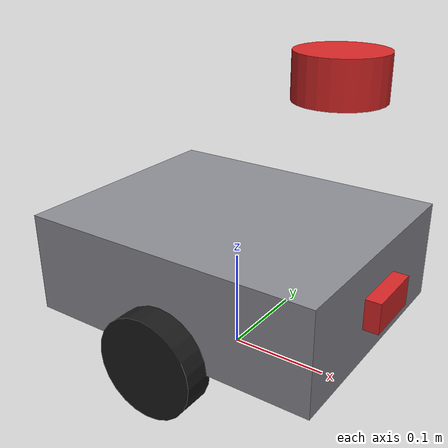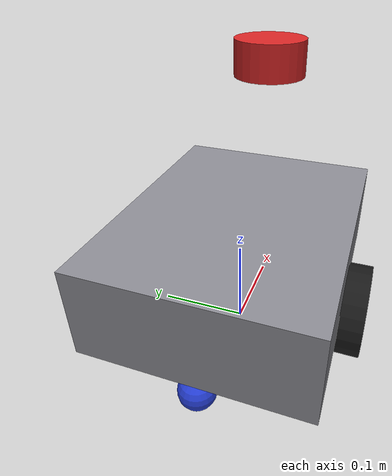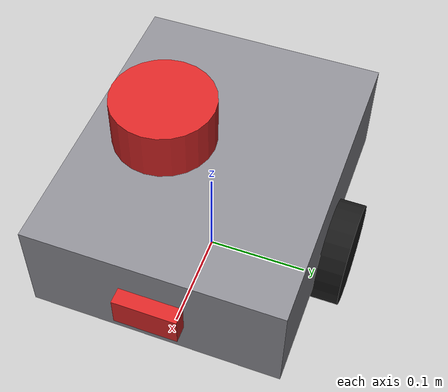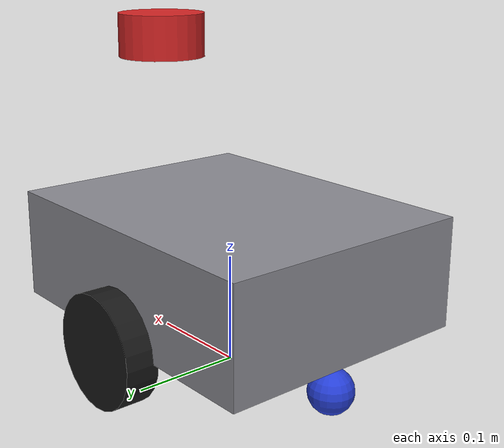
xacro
<?xml version="1.0"?>
<robot name="diff_bot" xmlns:xacro="http://www.ros.org/wiki/xacro">
  <xacro:arg name="sim" default="classic"/>
  <xacro:property name="sim" value="$(arg sim)"/>
  <xacro:property name="chassis_len"   value="0.30"/>
  <xacro:property name="chassis_wid"   value="0.24"/>
  <xacro:property name="chassis_hgt"   value="0.10"/>
  <xacro:property name="chassis_mass"  value="3.0"/>
  <xacro:property name="wheel_rad"     value="0.05"/>
  <xacro:property name="wheel_wid"     value="0.03"/>
  <xacro:property name="wheel_mass"    value="0.2"/>
  <xacro:property name="wheel_sep"     value="0.26"/>
  <xacro:property name="caster_rad"    value="0.02"/>
  <xacro:property name="caster_mass"   value="0.1"/>
  <xacro:property name="laser_size"    value="0.04"/>
  <xacro:property name="laser_mass"    value="0.05"/>
  <xacro:property name="laser_height"  value="0.14"/>
  <material name="grey">  <color rgba="0.55 0.55 0.58 1.0"/></material>
  <material name="black"> <color rgba="0.10 0.10 0.10 1.0"/></material>
  <material name="red">   <color rgba="0.85 0.15 0.15 1.0"/></material>
  <material name="blue">  <color rgba="0.15 0.25 0.85 1.0"/></material>
  <xacro:macro name="box_inertia" params="m l w h">
    <inertial>
      <mass value="${m}"/>
      <inertia ixx="${m*(h*h+w*w)/12.0}" ixy="0" ixz="0"
               iyy="${m*(l*l+h*h)/12.0}" iyz="0"
               izz="${m*(l*l+w*w)/12.0}"/>
    </inertial>
  </xacro:macro>
  <xacro:macro name="cyl_inertia" params="m r h">
    <inertial>
      <mass value="${m}"/>
      <inertia ixx="${m*(3*r*r+h*h)/12.0}" ixy="0" ixz="0"
               iyy="${m*r*r/2.0}"          iyz="0"
               izz="${m*(3*r*r+h*h)/12.0}"/>
    </inertial>
  </xacro:macro>

  <link name="base_footprint"/>

  <joint name="base_joint" type="fixed">
    <parent link="base_footprint"/>
    <child  link="base_link"/>

    <origin xyz="0 0 ${wheel_rad + chassis_hgt/2}" rpy="0 0 0"/>
  </joint>

  <link name="base_link">
    <visual>
      <origin xyz="0 0 0" rpy="0 0 0"/>
      <geometry><box size="${chassis_len} ${chassis_wid} ${chassis_hgt}"/></geometry>
      <material name="grey"/>
    </visual>
    <collision>
      <origin xyz="0 0 0" rpy="0 0 0"/>
      <geometry><box size="${chassis_len} ${chassis_wid} ${chassis_hgt}"/></geometry>
    </collision>
    <xacro:box_inertia m="${chassis_mass}" l="${chassis_len}" w="${chassis_wid}" h="${chassis_hgt}"/>
  </link>

  <joint name="nose_joint" type="fixed">
    <parent link="base_link"/>
    <child  link="nose_link"/>
    <origin xyz="${chassis_len/2} 0 0" rpy="0 0 0"/>
  </joint>
  <link name="nose_link">
    <visual>
      <geometry><box size="0.03 0.06 0.03"/></geometry>
      <material name="red"/>
    </visual>

    <collision>
      <geometry><box size="0.03 0.06 0.03"/></geometry>
    </collision>

    <xacro:box_inertia m="0.02" l="0.03" w="0.06" h="0.03"/>
  </link>
  <xacro:macro name="drive_wheel" params="prefix y_sign color">
    <link name="${prefix}_wheel_link">
      <visual>
        <origin xyz="0 0 0" rpy="${pi/2} 0 0"/>
        <geometry><cylinder radius="${wheel_rad}" length="${wheel_wid}"/></geometry>
        <material name="${color}"/>
      </visual>
      <collision>
        <origin xyz="0 0 0" rpy="${pi/2} 0 0"/>
        <geometry><cylinder radius="${wheel_rad}" length="${wheel_wid}"/></geometry>
      </collision>
      <xacro:cyl_inertia m="${wheel_mass}" r="${wheel_rad}" h="${wheel_wid}"/>
    </link>
    <joint name="${prefix}_wheel_joint" type="continuous">
      <parent link="base_link"/>
      <child  link="${prefix}_wheel_link"/>
      <origin xyz="0 ${y_sign*wheel_sep/2} ${-chassis_hgt/2}" rpy="0 0 0"/>
      <axis xyz="0 1 0"/>
      <limit effort="20" velocity="20"/>
      <dynamics damping="0.1" friction="0.1"/>
    </joint>
  </xacro:macro>
  <xacro:drive_wheel prefix="left"  y_sign="1"  color="black"/>
  <xacro:drive_wheel prefix="right" y_sign="-1" color="black"/>
  <link name="caster_link">
    <visual>
      <geometry><sphere radius="${caster_rad}"/></geometry>
      <material name="blue"/>
    </visual>
    <collision>
      <geometry><sphere radius="${caster_rad}"/></geometry>
    </collision>
    <inertial>
      <mass value="${caster_mass}"/>
      <inertia ixx="${2*caster_mass*caster_rad*caster_rad/5.0}" ixy="0" ixz="0"
               iyy="${2*caster_mass*caster_rad*caster_rad/5.0}" iyz="0"
               izz="${2*caster_mass*caster_rad*caster_rad/5.0}"/>
    </inertial>
  </link>

  <joint name="caster_joint" type="continuous">
    <parent link="base_link"/>
    <child  link="caster_link"/>
    <origin xyz="${-chassis_len/2 + 0.02} 0 ${-chassis_hgt/2 - wheel_rad + caster_rad}" rpy="0 0 0"/>
    <axis xyz="1 0 0"/>
    <limit effort="1" velocity="20"/>
  </joint>
  <gazebo reference="caster_link">
    <mu1>0.0</mu1>
    <mu2>0.0</mu2>
    <kp>1000000.0</kp>
    <kd>1.0</kd>
    <minDepth>0.001</minDepth>
    <maxVel>0.1</maxVel>
  </gazebo>
  <gazebo reference="left_wheel_link">
    <mu1>1.0</mu1>
    <mu2>1.0</mu2>
  </gazebo>
  <gazebo reference="right_wheel_link">
    <mu1>1.0</mu1>
    <mu2>1.0</mu2>
  </gazebo>
  <link name="laser_link">
    <visual>
      <geometry><cylinder radius="${laser_size}" length="${laser_size}"/></geometry>
      <material name="red"/>
    </visual>
    <xacro:cyl_inertia m="${laser_mass}" r="${laser_size}" h="${laser_size}"/>
  </link>
  <joint name="laser_joint" type="fixed">
    <parent link="base_link"/>
    <child  link="laser_link"/>
    <origin xyz="${chassis_len/2 - 0.05} 0 ${chassis_hgt/2 + laser_height}" rpy="0 0 0"/>
  </joint>
  <xacro:if value="${sim == 'classic'}">
  <gazebo>
    <plugin filename="libgazebo_ros_diff_drive.so" name="diff_drive">
      <ros>
        <namespace>/</namespace>
        <remapping>cmd_vel:=cmd_vel</remapping>
        <remapping>odom:=odom</remapping>
      </ros>
      <update_rate>100</update_rate>
      <left_joint>left_wheel_joint</left_joint>
      <right_joint>right_wheel_joint</right_joint>
      <wheel_separation>${wheel_sep}</wheel_separation>
      <wheel_diameter>${wheel_rad*2}</wheel_diameter>
      <max_wheel_torque>20</max_wheel_torque>
      <max_wheel_acceleration>1.0</max_wheel_acceleration>
      <publish_odom>true</publish_odom>
      <publish_odom_tf>true</publish_odom_tf>
      <publish_wheel_tf>true</publish_wheel_tf>
      <odometry_frame>odom</odometry_frame>
      <robot_base_frame>base_footprint</robot_base_frame>
    </plugin>
  </gazebo>
  </xacro:if>
  <xacro:if value="${sim == 'gz'}">
  <gazebo>
    <plugin filename="ignition-gazebo-diff-drive-system"
            name="ignition::gazebo::systems::DiffDrive">
      <left_joint>left_wheel_joint</left_joint>
      <right_joint>right_wheel_joint</right_joint>
      <wheel_separation>${wheel_sep}</wheel_separation>
      <wheel_radius>${wheel_rad}</wheel_radius>
      <max_linear_acceleration>1.0</max_linear_acceleration>
      <min_linear_acceleration>-1.0</min_linear_acceleration>
      <max_angular_acceleration>2.0</max_angular_acceleration>
      <min_angular_acceleration>-2.0</min_angular_acceleration>
      <max_linear_velocity>0.5</max_linear_velocity>
      <min_linear_velocity>-0.5</min_linear_velocity>
      <max_angular_velocity>2.0</max_angular_velocity>
      <min_angular_velocity>-2.0</min_angular_velocity>
      <topic>/cmd_vel</topic>
      <odom_topic>/odom</odom_topic>
      <tf_topic>/tf</tf_topic>
      <frame_id>odom</frame_id>
      <child_frame_id>base_footprint</child_frame_id>
      <odom_publish_frequency>50</odom_publish_frequency>
    </plugin>
  </gazebo>
  </xacro:if>
  <xacro:if value="${sim == 'classic'}">
  <gazebo reference="laser_link">
    <sensor name="laser" type="ray">
      <always_on>true</always_on>
      <update_rate>20</update_rate>
      <visualize>true</visualize>
      <pose>0 0 0 0 0 0</pose>
      <ray>
        <scan>
          <horizontal>
            <samples>720</samples>
            <resolution>1.0</resolution>
            <min_angle>-3.14159265</min_angle>
            <max_angle>3.14159265</max_angle>
          </horizontal>
        </scan>
        <range>
          <min>0.20</min>
          <max>12.0</max>
          <resolution>0.01</resolution>
        </range>

        <noise>
          <type>gaussian</type>
          <mean>0.0</mean>
          <stddev>0.01</stddev>
        </noise>
      </ray>

      <plugin filename="libgazebo_ros_ray_sensor.so" name="laser_controller">
        <ros>
          <namespace>/</namespace>

          <remapping>~/out:=scan</remapping>
        </ros>
        <output_type>sensor_msgs/LaserScan</output_type>
        <frame_name>laser_link</frame_name>
      </plugin>
    </sensor>
  </gazebo>
  </xacro:if>
  <xacro:if value="${sim == 'gz'}">
  <gazebo reference="laser_link">
    <sensor name="laser" type="gpu_lidar">
      <topic>/scan</topic>
      <always_on>true</always_on>
      <update_rate>20</update_rate>
      <visualize>true</visualize>
      <pose>0 0 0 0 0 0</pose>
      <lidar>
        <scan>
          <horizontal>
            <samples>720</samples>
            <resolution>1</resolution>
            <min_angle>-3.14159265</min_angle>
            <max_angle>3.14159265</max_angle>
          </horizontal>
        </scan>
        <range>
          <min>0.30</min>
          <max>12.0</max>
          <resolution>0.01</resolution>
        </range>
        <noise>
          <type>gaussian</type>
          <mean>0.0</mean>
          <stddev>0.01</stddev>
        </noise>
      </lidar>
    </sensor>
  </gazebo>
  </xacro:if>
  <xacro:if value="${sim == 'gz'}">
  <gazebo>
    <plugin filename="ignition-gazebo-joint-state-publisher-system"
            name="ignition::gazebo::systems::JointStatePublisher">
      <topic>/joint_states</topic>
    </plugin>
  </gazebo>
  </xacro:if>
</robot>
